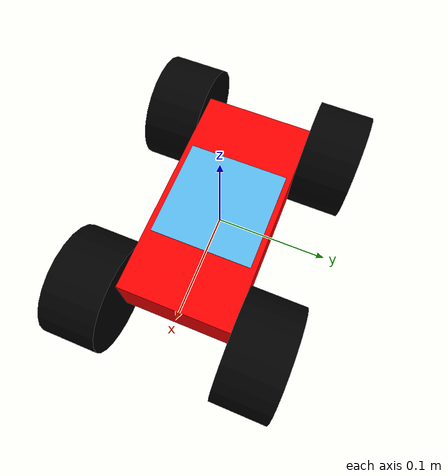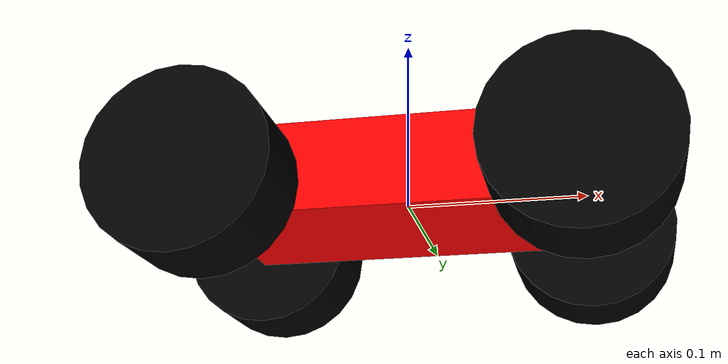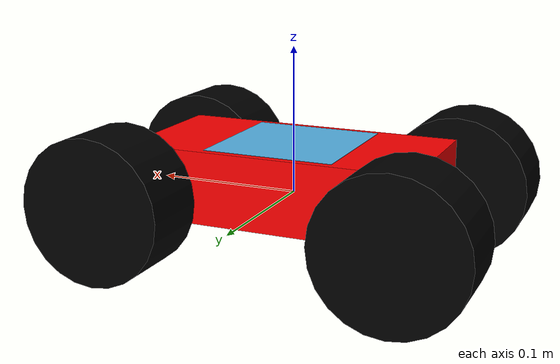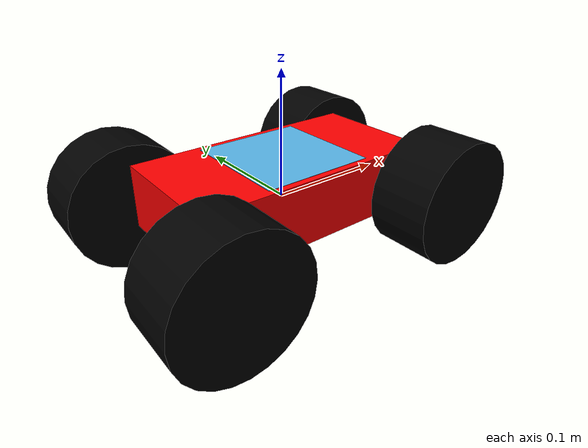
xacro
<?xml version="1.0" encoding="utf-8"?>

<robot name="wheely_robot" xmlns:xacro="http://www.ros.org/wiki/xacro">

  <xacro:include filename="inertial_macros.xacro"/>
  <xacro:include filename="materials.xacro"/>
  <xacro:include filename="wheely.gazebo"/>

  <!-- Robot Links -->

  <link name="wheely_base_link">
    <xacro:inertial_box mass="0.1" x="0.2" y="0.1" z="0.05">
      <origin xyz="0 0 0" rpy="0 0 0"/>
    </xacro:inertial_box>
    <visual>
      <origin xyz="0 0 0.01" rpy="0 0 0" />
      <geometry>
        <box size="0.2 0.1 0.05"/>
      </geometry>
      <material name="red"/>
    </visual>
    <collision>
      <origin xyz="0 0 0" rpy="0 0 0" />
      <geometry>
        <box size="0.2 0.1 0.05"/>
      </geometry>
    </collision>
  </link>

  <link name="aruco_link">
    <inertial>
      <origin xyz="0 0 0" rpy="0 0 0"/>
      <mass value="0.001" />
      <inertia ixx="0.00741666666667" ixy="0.0" ixz="0.0" iyy="0.00585416666667" iyz="0.0" izz="0.00260416666667"/>
    </inertial>
    <collision>
      <origin xyz="0 0 0" rpy="0 0 0"/>
      <geometry>
        <box size="0.1 0.1 0.001"/>
      </geometry>
    </collision>
    <visual>
      <origin rpy="0.0 0 0" xyz="0 0 0"/>
      <geometry>
        <mesh filename="package://wheely_robot/meshes/ar_2020_v2.dae"/>
      </geometry>
    </visual>
  </link>

  <joint name="aruco_joint" type="fixed">
    <parent link="wheely_base_link"/>
    <child link="aruco_link"/>
    <origin xyz="0 0 0.03" rpy="${pi} 0 0" />
  </joint>

  <link name="front_left_wheel">
    <xacro:inertial_cylinder mass="0.05" length="0.05" radius="0.05">
      <origin xyz="0 0 0" rpy="0 0 0"/>
    </xacro:inertial_cylinder>
    <visual>
      <origin xyz="0 0 0" rpy="0 0 0" />
      <geometry>
        <cylinder length="0.05" radius="0.05"/>
      </geometry>
      <material name="black"/>
    </visual>
    <collision>
      <origin xyz="0 0 0" rpy="0 0 0" />
      <geometry>
        <cylinder length="0.05" radius="0.05"/>
      </geometry>
    </collision>
  </link>

  <joint name="front_left_wheel_joint" type="continuous">
    <parent link="wheely_base_link"/>
    <child link="front_left_wheel"/>
    <origin xyz="0.1 -0.075 0" rpy="-${pi/2} 0 0" />
    <axis xyz="0 0 1"/>
  </joint>

  <link name="front_right_wheel">
    <xacro:inertial_cylinder mass="0.05" length="0.05" radius="0.05">
      <origin xyz="0 0 0" rpy="0 0 0"/>
    </xacro:inertial_cylinder>
    <visual>
      <origin xyz="0 0 0" rpy="0 0 0" />
      <geometry>
        <cylinder length="0.05" radius="0.05"/>
      </geometry>
      <material name="black"/>
    </visual>
    <collision>
      <origin xyz="0 0 0" rpy="0 0 0" />
      <geometry>
        <cylinder length="0.05" radius="0.05"/>
      </geometry>
    </collision>
  </link>

  <joint name="front_right_wheel_joint" type="continuous">
    <parent link="wheely_base_link"/>
    <child link="front_right_wheel"/>
    <origin xyz="0.1 0.075 0" rpy="-${pi/2} 0 0" />
    <axis xyz="0 0 1"/>
  </joint>

  <link name="rear_left_wheel">
    <xacro:inertial_cylinder mass="0.05" length="0.05" radius="0.05">
      <origin xyz="0 0 0" rpy="0 0 0"/>
    </xacro:inertial_cylinder>
    <visual>
      <origin xyz="0 0 0" rpy="0 0 0" />
      <geometry>
        <cylinder length="0.05" radius="0.05"/>
      </geometry>
      <material name="black"/>
    </visual>
    <collision>
      <origin xyz="0 0 0" rpy="0 0 0" />
      <geometry>
        <cylinder length="0.05" radius="0.05"/>
      </geometry>
    </collision>
  </link>

  <joint name="rear_left_wheel_joint" type="continuous">
    <parent link="wheely_base_link"/>
    <child link="rear_left_wheel"/>
    <origin xyz="-0.1 -0.075 0" rpy="-${pi/2} 0 0" />
    <axis xyz="0 0 1"/>
  </joint>

  <link name="rear_right_wheel">
    <xacro:inertial_cylinder mass="0.05" length="0.05" radius="0.05">
      <origin xyz="0 0 0" rpy="0 0 0"/>
    </xacro:inertial_cylinder>
    <visual>
      <origin xyz="0 0 0" rpy="0 0 0" />
      <geometry>
        <cylinder length="0.05" radius="0.05"/>
      </geometry>
      <material name="black"/>
    </visual>
    <collision>
      <origin xyz="0 0 0" rpy="0 0 0" />
      <geometry>
        <cylinder length="0.05" radius="0.05"/>
      </geometry>
    </collision>
  </link>

  <joint name="rear_right_wheel_joint" type="continuous">
    <parent link="wheely_base_link"/>
    <child link="rear_right_wheel"/>
    <origin xyz="-0.1 0.075 0" rpy="-${pi/2} 0 0" />
    <axis xyz="0 0 1"/>
  </joint>

</robot>

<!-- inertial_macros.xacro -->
<robot name="wheely_robot" xmlns:xacro="http://www.ros.org/wiki/xacro" >

    <!-- Specify some standard inertial calculations https://en.wikipedia.org/wiki/List_of_moments_of_inertia -->
    <!-- These make use of xacro's mathematical functionality -->

    <xacro:macro name="inertial_sphere" params="mass radius *origin">
        <inertial>
            <xacro:insert_block name="origin"/>
            <mass value="${mass}" />
            <inertia ixx="${(2/5) * mass * (radius*radius)}" ixy="0.0" ixz="0.0"
                    iyy="${(2/5) * mass * (radius*radius)}" iyz="0.0"
                    izz="${(2/5) * mass * (radius*radius)}" />
        </inertial>
    </xacro:macro>

    <xacro:macro name="inertial_box" params="mass x y z *origin">
        <inertial>
            <xacro:insert_block name="origin"/>
            <mass value="${mass}" />
            <inertia ixx="${(1/12) * mass * (y*y+z*z)}" ixy="0.0" ixz="0.0"
                    iyy="${(1/12) * mass * (x*x+z*z)}" iyz="0.0"
                    izz="${(1/12) * mass * (x*x+y*y)}" />
        </inertial>
    </xacro:macro>

    <xacro:macro name="inertial_cylinder" params="mass length radius *origin">
        <inertial>
            <xacro:insert_block name="origin"/>
            <mass value="${mass}" />
            <inertia ixx="${(1/12) * mass * (3*radius*radius + length*length)}" ixy="0.0" ixz="0.0"
                    iyy="${(1/12) * mass * (3*radius*radius + length*length)}" iyz="0.0"
                    izz="${(1/2) * mass * (radius*radius)}" />
        </inertial>
    </xacro:macro>

</robot>

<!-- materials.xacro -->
<robot name="wheely_robot" xmlns:xacro="http://www.ros.org/wiki/xacro">

    <material name="white">
        <color rgba="1 1 1 1" />
    </material>

    <material name="orange">
        <color rgba="1 0.3 0.1 1"/>
    </material>

    <material name="blue">
        <color rgba="0.2 0.2 1 1"/>
    </material>

    <material name="black">
        <color rgba="0 0 0 1"/>
    </material>

    <material name="red">
        <color rgba="1 0 0 1"/>
    </material>

</robot>
